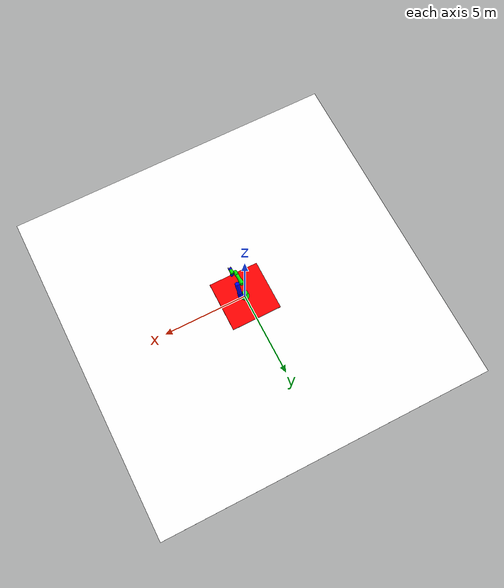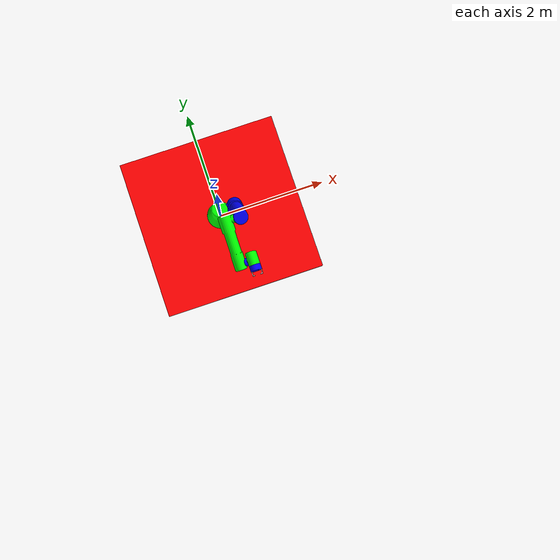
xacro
<?xml version="1.0"?>
<robot name="arm" xmlns:xacro="http://ros.org/wiki/xacro">

<!-- Defining the colors used in this robot -->
    <material name="Black">
        <color rgba="0 0 0 1"/>
    </material>

    <material name="White">
        <color rgba="1 1 1 1"/>
    </material>

    <material name="Blue">
        <color rgba="0 0 1 1"/>
    </material>

    <material name="Red">
        <color rgba="1 0 0 1"/>
    </material>

    <material name="Hide">
        <color rgba="1 1 1 0"/>
    </material>

    <!-- Constants -->
    <xacro:property name="M_PI" value="3.14159"/>

    <!-- Gripper frame -->
    <xacro:property name="grasp_frame_radius" value="0.001" />

    <!-- Inertial matrix -->
    <xacro:macro name="inertial_matrix" params="mass">
        <inertial>
            <mass value="${mass}" />
            <inertia ixx="1.0" ixy="0.0" ixz="0.0" iyy="0.5" iyz="0.0" izz="1.0" />
        </inertial>
    </xacro:macro>

    <!-- ///////////////////////////////////////   bottom_joint   ////////////////////////////////////////// -->
    <joint name="bottom_joint" type="fixed">
        <origin xyz="0 0 0" rpy="0 0 0" />
        <parent link="base_link"/>
        <child link="bottom_link"/>
    </joint>
    <link name="bottom_link">
        <visual>
              <origin xyz=" 0 0 -0.02"  rpy="0 0 0"/>
                  <geometry>
                       <box size="20 20 0.02" />
                  </geometry>
              <material name="Hide" />
        </visual>
        <collision>
            <origin xyz=" 0 0 -0.02"  rpy="0 0 0"/>
            <geometry>
                <box size="20 20 0.02" />
            </geometry>
        </collision>
        <xacro:inertial_matrix mass="1000"/>
    </link>

  <link name="base_link">
    <visual>
      <origin
        xyz="0 0 0"
        rpy="0 0 0" />
      <geometry>
        <mesh
          filename="package://marm_description/meshes/base_link.STL" />
      </geometry>
      <material
        name="Red">
        <color
          rgba="1 0 0 1" />
      </material>
    </visual>
    <collision>
      <origin
        xyz="0 0 0"
        rpy="0 0 0" />
      <geometry>
        <mesh
          filename="package://marm_description/meshes/base_link.STL" />
      </geometry>
    </collision>
  </link>
  <link
    name="link1">
    <inertial>
      <origin
        xyz="3.491E-07 -0.0028335 -0.01492"
        rpy="0 0 0" />
      <mass
        value="57.966" />
      <inertia
        ixx="2.5483"
        ixy="-9.0628E-07"
        ixz="1.5304E-06"
        iyy="2.5639"
        iyz="-0.04354"
        izz="1.0444" />
    </inertial>
    <visual>
      <origin
        xyz="0 0 0"
        rpy="0 0 0" />
      <geometry>
        <mesh
          filename="package://marm_description/meshes/link1.STL" />
      </geometry>
      <material
        name="Green">
        <color
          rgba="0 1 0 1" />
      </material>
    </visual>
    <collision>
      <origin
        xyz="0 0 0"
        rpy="0 0 0" />
      <geometry>
        <mesh
          filename="package://marm_description/meshes/link1.STL" />
      </geometry>
    </collision>
  </link>
  <joint
    name="joint1"
    type="revolute">
    <origin
      xyz="0 0 0.25"
      rpy="3.1416 6.123E-17 1.5708" />
    <parent
      link="base_link" />
    <child
      link="link1" />
    <axis
      xyz="0 0 -1" />
    <limit
      lower="-2.96"
      upper="2.96"
      effort="300"
      velocity="1" />
    <dynamics
      damping="50"
      friction="1" />
  </joint>
  <link
    name="link2">
    <inertial>
      <origin
        xyz="0.004065 1.50746 -3.8173E-08"
        rpy="0 0 0" />
      <mass
        value="57.425" />
      <inertia
        ixx="6.4378"
        ixy="0.19841"
        ixz="-9.9298E-07"
        iyy="0.53245"
        iyz="2.3202E-06"
        izz="6.4921" />
    </inertial>
    <visual>
      <origin
        xyz="0 -0.1 0"
        rpy="0 0 0" />
      <geometry>
        <mesh
          filename="package://marm_description/meshes/link2.STL" />
      </geometry>
      <material
        name="Blue">
        <color
          rgba="0 0 1 1" />
      </material>
    </visual>
    <collision>
      <origin
        xyz="0 -0.1 0"
        rpy="0 0 0" />
      <geometry>
        <mesh
          filename="package://marm_description/meshes/link2.STL" />
      </geometry>
    </collision>
  </link>
  <joint
    name="joint2"
    type="revolute">
    <origin
      xyz="0 0.29 -0.28"
      rpy="-1.9864 0 -1.5708" />
    <parent
      link="link1" />
    <child
      link="link2" />
    <axis
      xyz="-1 0 0" />
    <limit
      lower="-2.35"
      upper="2.35"
      effort="300"
      velocity="1" />
    <dynamics
      damping="50"
      friction="1" />
  </joint>

  <link
    name="link3">
    <inertial>
      <origin
        xyz="0.0062688 0.45093 -4.6336E-09"
        rpy="0 0 0" />
      <mass
        value="38.36" />
      <inertia
        ixx="3.5596"
        ixy="0.1423"
        ixz="-1.1353E-06"
        iyy="0.27636"
        iyz="2.906E-07"
        izz="3.6045" />
    </inertial>
    <visual>
      <origin
        xyz="0 -0.1 0"
        rpy="0 0 0" />
      <geometry>
        <mesh
          filename="package://marm_description/meshes/link3.STL" />
      </geometry>
      <material
        name="Green">
        <color
          rgba="0 1 0 1" />
      </material>
    </visual>
    <collision>
      <origin
        xyz="0 -0.1 0"
        rpy="0 0 0" />
      <geometry>
        <mesh
          filename="package://marm_description/meshes/link3.STL" />
      </geometry>
    </collision>
  </link>
  <joint
    name="joint3"
    type="revolute">
    <origin
      xyz="0.27 0.9 0"
      rpy="-1.7284 0 3.1416" />
    <parent
      link="link2" />
    <child
      link="link3" />
    <axis
      xyz="1 0 0" />
    <limit
      lower="-2.62"
      upper="2.62"
      effort="300"
      velocity="1" />
    <dynamics
      damping="50"
      friction="1" />
  </joint>
  <link
    name="link4">
    <inertial>
      <origin
        xyz="8.6704E-09 -0.13203 -0.020954"
        rpy="0 0 0" />
      <mass
        value="10.038" />
      <inertia
        ixx="0.10563"
        ixy="-1.3415E-07"
        ixz="-4.5282E-08"
        iyy="0.071748"
        iyz="0.0067371"
        izz="0.082807" />
    </inertial>
    <visual>
      <origin
        xyz="0 0.1 0"
        rpy="0 0 0" />
      <geometry>
        <mesh
          filename="package://marm_description/meshes/link4.STL" />
      </geometry>
      <material
        name="Blue">
        <color
          rgba="0 0 1 1" />
      </material>
    </visual>
    <collision>
      <origin
        xyz="0 0.1 0"
        rpy="0 0 0" />
      <geometry>
        <mesh
          filename="package://marm_description/meshes/link4.STL" />
      </geometry>
    </collision>
  </link>
  <joint
    name="joint4"
    type="revolute">
    <origin
      xyz="0.23 0.8 0"
      rpy="1.5708 0.25798 1.5708" />
    <parent
      link="link3" />
    <child
      link="link4" />
    <axis
      xyz="0 0 -1" />
    <limit
      lower="-2.62"
      upper="2.62"
      effort="300"
      velocity="1" />
    <dynamics
      damping="50"
      friction="1" />
  </joint>
  <link
    name="link5">
    <inertial>
      <origin
        xyz="1.1124E-08 0.10421 0.041487"
        rpy="0 0 0" />
      <mass
        value="9.417" />
      <inertia
        ixx="0.087332"
        ixy="2.1223E-08"
        ixz="-5.3766E-09"
        iyy="0.08101"
        iyz="0.001687"
        izz="0.055716" />
    </inertial>
    <visual>
      <origin
        xyz="0 -0.1 0"
        rpy="0 ${M_PI} 0" />
      <geometry>
        <mesh
          filename="package://marm_description/meshes/link5.STL" />
      </geometry>
      <material
        name="Green">
        <color
          rgba="0 1 0 1" />
      </material>
    </visual>
    <collision>
      <origin
        xyz="0 -0.1 0"
        rpy="0 ${M_PI} 0" />
      <geometry>
        <mesh
          filename="package://marm_description/meshes/link5.STL" />
      </geometry>
    </collision>
  </link>
  <joint
    name="joint5"
    type="revolute">
    <origin
      xyz="0 -0.35 0"
      rpy="1.5708 1.5708 0" />
    <parent
      link="link4" />
    <child
      link="link5" />
    <axis
      xyz="0 0 1" />
    <limit
      lower="-2.62"
      upper="2.62"
      effort="300"
      velocity="1" />
    <dynamics
      damping="50"
      friction="1" />
  </joint>
  <link
    name="link6">
    <inertial>
      <origin
        xyz="0 0.076204 0"
        rpy="0 0 0" />
      <mass
        value="3.6844" />
      <inertia
        ixx="0.015237"
        ixy="2.7768E-19"
        ixz="6.8501E-20"
        iyy="0.016852"
        iyz="-1.594E-18"
        izz="0.013643" />
    </inertial>
    <visual>
      <origin
        xyz="0 0 0"
        rpy="0 0 0" />
      <geometry>
        <mesh
          filename="package://marm_description/meshes/link6.STL" />
      </geometry>
      <material
        name="Blue">
        <color
          rgba="0 0 1 1" />
      </material>
    </visual>
    <collision>
      <origin
        xyz="0 0 0"
        rpy="0 0 0" />
      <geometry>
        <mesh
          filename="package://marm_description/meshes/link6.STL" />
      </geometry>
    </collision>
  </link>
  <joint
    name="joint6"
    type="revolute">
    <origin
      xyz="0 0.09 0"
      rpy="3.1416 0 3.1416" />
    <parent
      link="link5" />
    <child
      link="link6" />
    <axis
      xyz="0 1 0" />
    <limit
      lower="-6.28"
      upper="6.28"
      effort="300"
      velocity="1" />
    <dynamics
      damping="50"
      friction="1" />
  </joint>
  <link
    name="gripper_finger_link1">
    <inertial>
      <origin
        xyz="-0.0045948 0 -0.018054"
        rpy="0 0 0" />
      <mass
        value="0.1382" />
      <inertia
        ixx="9.1673E-05"
        ixy="-1.3832E-19"
        ixz="-2.4411E-05"
        iyy="0.00022117"
        iyz="2.0172E-20"
        izz="0.00025212" />
    </inertial>
    <visual>
      <origin
        xyz="0 0 0"
        rpy="0 0 0" />
      <geometry>
        <mesh
          filename="package://marm_description/meshes/gripper_finger_link1.STL" />
      </geometry>
      <material
        name="White">
        <color
          rgba="1 1 1 1" />
      </material>
    </visual>
    <collision>
      <origin
        xyz="0 0 0"
        rpy="0 0 0" />
      <geometry>
        <mesh
          filename="package://marm_description/meshes/gripper_finger_link1.STL" />
      </geometry>
    </collision>
  </link>
  <joint
    name="finger_joint1"
    type="prismatic">
    <origin
      xyz="-0.09 0.15 0"
      rpy="-1.5708 0 1.5708" />
    <parent
      link="link6" />
    <child
      link="gripper_finger_link1" />
    <axis
      xyz="0 0 -1" />
    <limit
      lower="0"
      upper="0.05"
      effort="100"
      velocity="1" />
    <dynamics
      damping="50"
      friction="1" />
  </joint>
  <link
    name="gripper_finger_link2">
    <inertial>
      <origin
        xyz="-0.0045948 2.2204E-16 -0.018054"
        rpy="0 0 0" />
      <mass
        value="0.1382" />
      <inertia
        ixx="9.1673E-05"
        ixy="-7.1888E-22"
        ixz="-2.4411E-05"
        iyy="0.00022117"
        iyz="4.622E-20"
        izz="0.00025212" />
    </inertial>
    <visual>
      <origin
        xyz="0 0 0"
        rpy="0 0 0" />
      <geometry>
        <mesh
          filename="package://marm_description/meshes/gripper_finger_link2.STL" />
      </geometry>
      <material
        name="White">
        <color
          rgba="1 1 1 1" />
      </material>
    </visual>
    <collision>
      <origin
        xyz="0 0 0"
        rpy="0 0 0" />
      <geometry>
        <mesh
          filename="package://marm_description/meshes/gripper_finger_link2.STL" />
      </geometry>
    </collision>
  </link>
  <joint
    name="finger_joint2"
    type="fixed">
    <origin
      xyz="0.09 0.15 0"
      rpy="1.5708 0 1.5708" />
    <parent
      link="link6" />
    <child
      link="gripper_finger_link2" />
  </joint>

    <!-- Grasping frame -->
    <link name="grasping_frame"/>

    <joint name="grasping_frame_joint" type="fixed">
      <parent link="link6"/>
      <child link="grasping_frame"/>
      <origin xyz="0.08 0 0" rpy="0 0 0"/>
    </joint>

    <!-- /////////////////////////////////   Gazebo   ////////////////////////////////////// -->
    <gazebo reference="bottom_link">
        <material>Gazebo/White</material>
    </gazebo>
    <gazebo reference="base_link">
        <material>Gazebo/White</material>
    </gazebo>
    <gazebo reference="link1">
        <material>Gazebo/Blue</material>
    </gazebo>
    <gazebo reference="link2">
        <material>Gazebo/White</material>
    </gazebo>
    <gazebo reference="link3">
        <material>Gazebo/Blue</material>
    </gazebo>
    <gazebo reference="link4">
        <material>Gazebo/Black</material>
    </gazebo>
    <gazebo reference="link5">
        <material>Gazebo/White</material>
    </gazebo>
    <gazebo reference="link6">
        <material>Gazebo/Blue</material>
    </gazebo>
    <gazebo reference="gripper_finger_link1">
        <material>Gazebo/White</material>
    </gazebo>
    <gazebo reference="gripper_finger_link2">
        <material>Gazebo/White</material>
    </gazebo>

    <!-- Transmissions for ROS Control -->
    <xacro:macro name="transmission_block" params="joint_name">
        <transmission name="tran1">
            <type>transmission_interface/SimpleTransmission</type>
            <joint name="${joint_name}">
                <hardwareInterface>hardware_interface/PositionJointInterface</hardwareInterface>
            </joint>
            <actuator name="motor1">
                <hardwareInterface>hardware_interface/PositionJointInterface</hardwareInterface>
                <mechanicalReduction>1</mechanicalReduction>
            </actuator>
        </transmission>
    </xacro:macro>

    <xacro:transmission_block joint_name="joint1"/>
    <xacro:transmission_block joint_name="joint2"/>
    <xacro:transmission_block joint_name="joint3"/>
    <xacro:transmission_block joint_name="joint4"/>
    <xacro:transmission_block joint_name="joint5"/>
    <xacro:transmission_block joint_name="joint6"/>
    <xacro:transmission_block joint_name="finger_joint1"/>

    <!-- ros_control plugin -->
    <gazebo>
        <plugin name="gazebo_ros_control" filename="libgazebo_ros_control.so">
            <robotNamespace>/arm</robotNamespace>
        </plugin>
    </gazebo>
</robot>
